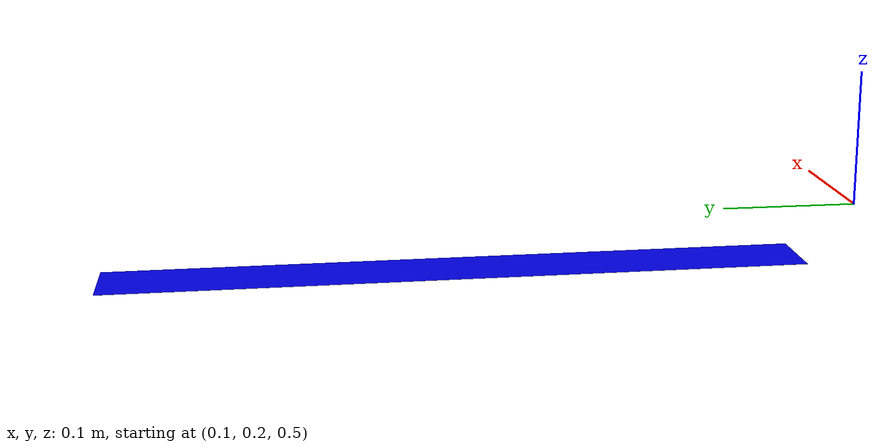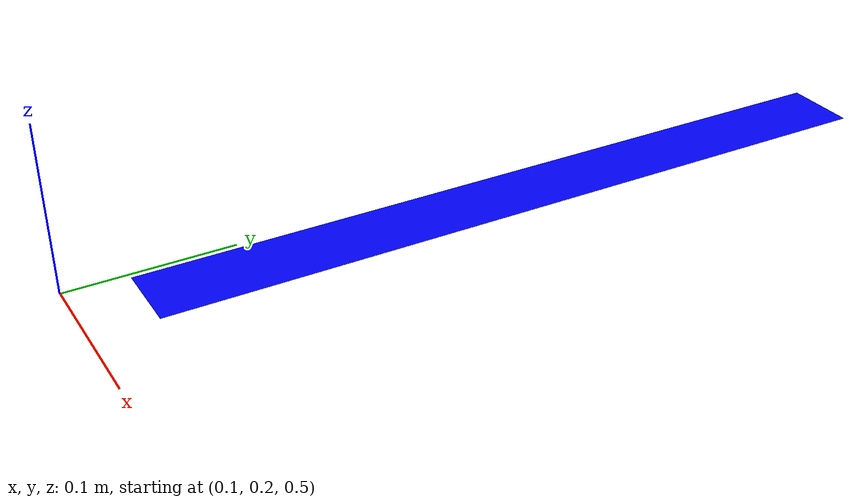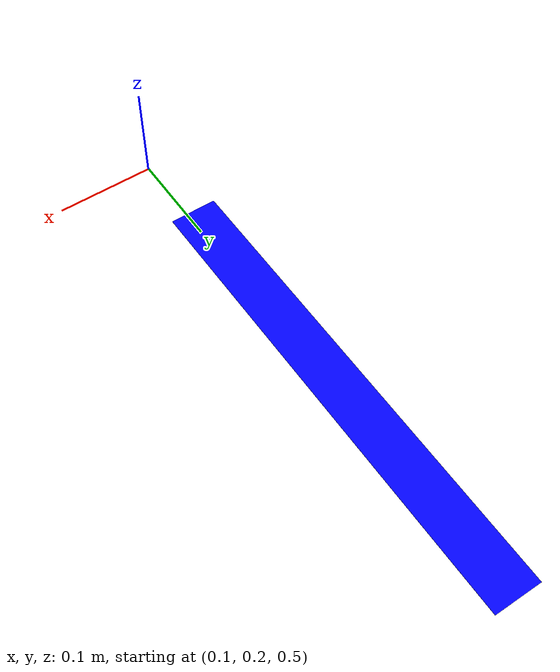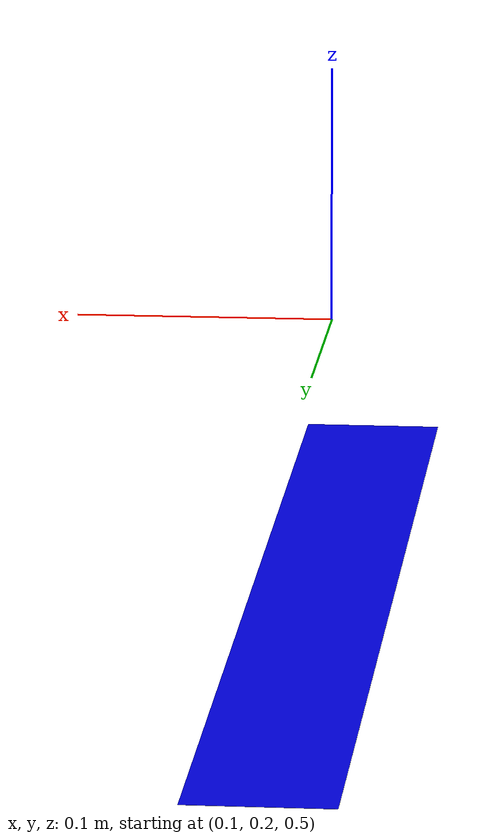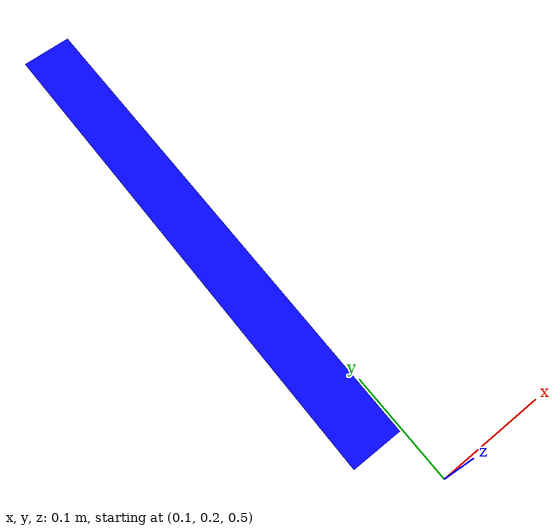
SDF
<?xml version="1.0" ?>
<sdf version="1.6">
  <model name="red_plane_sensor">
    <static>true</static>  <!-- Plane is static -->
    <link name="red_plane_link">
      <visual name="visual">
        <geometry>
          <box> <!-- Use a box instead of plane for better control -->
            <size>0.05 0.5 0.0001</size>  <!-- Add some thickness to the plane -->
          </box>
        </geometry>
        <material>
          <ambient>0 0 1 1</ambient>  <!-- Red color -->
          <diffuse>0 0 1 1</diffuse>
        </material>
      </visual>
      <collision name="collision">
        <geometry>
          <box> <!-- Use a box instead of plane for better control -->
            <size>0.05 0.5 0.0001</size>  <!-- Add some thickness to the plane -->
          </box>
        </geometry>
      </collision>
      <sensor name="red_plane_contact_sensor" type="contact">
        <update_rate>10</update_rate>
        <contact>
          <collision>collision</collision>
        </contact>
        <plugin name="red_plane_contact_plugin" filename="libgazebo_ros_bumper.so">
          <ros>
            <namespace>/red_plane</namespace>
          </ros>
          <topicName>/red_plane/bumper_states</topicName>
        </plugin>
      </sensor>
    </link>
    <pose>0.08 0.5 0.47 0 0 0</pose>  <!-- Custom position on the conveyor belt -->
  </model>
</sdf>
